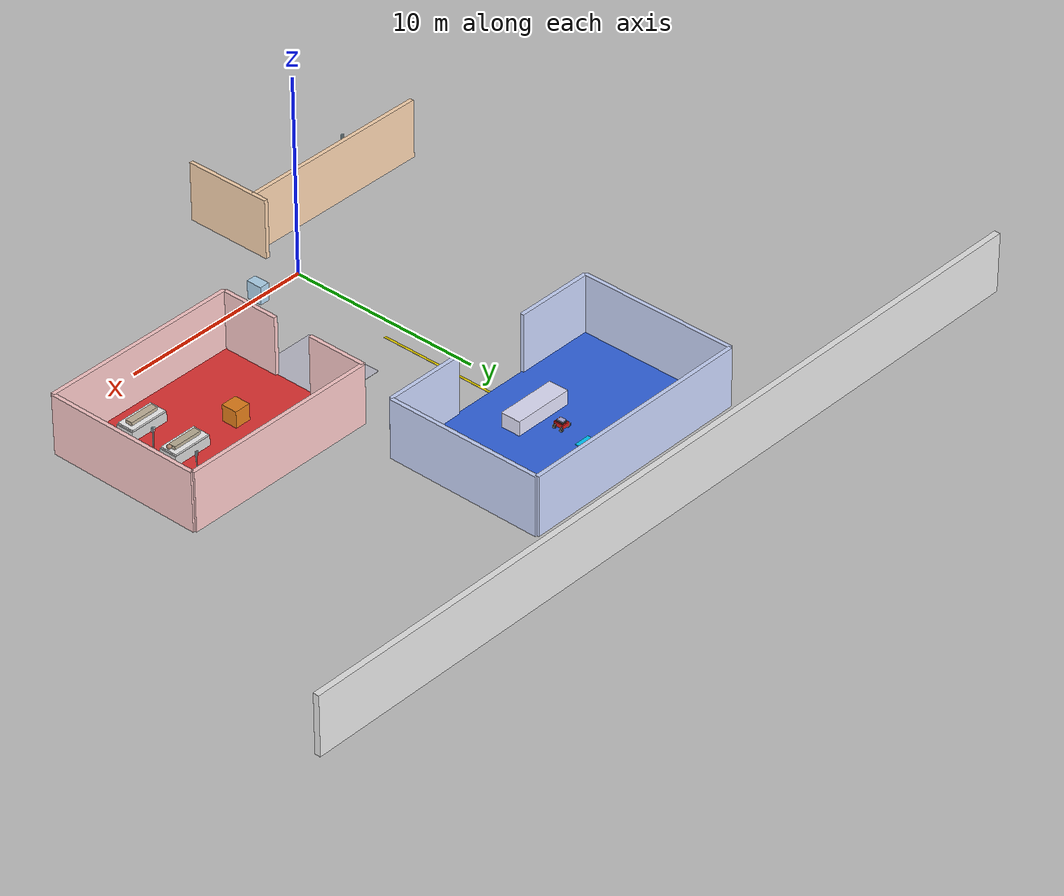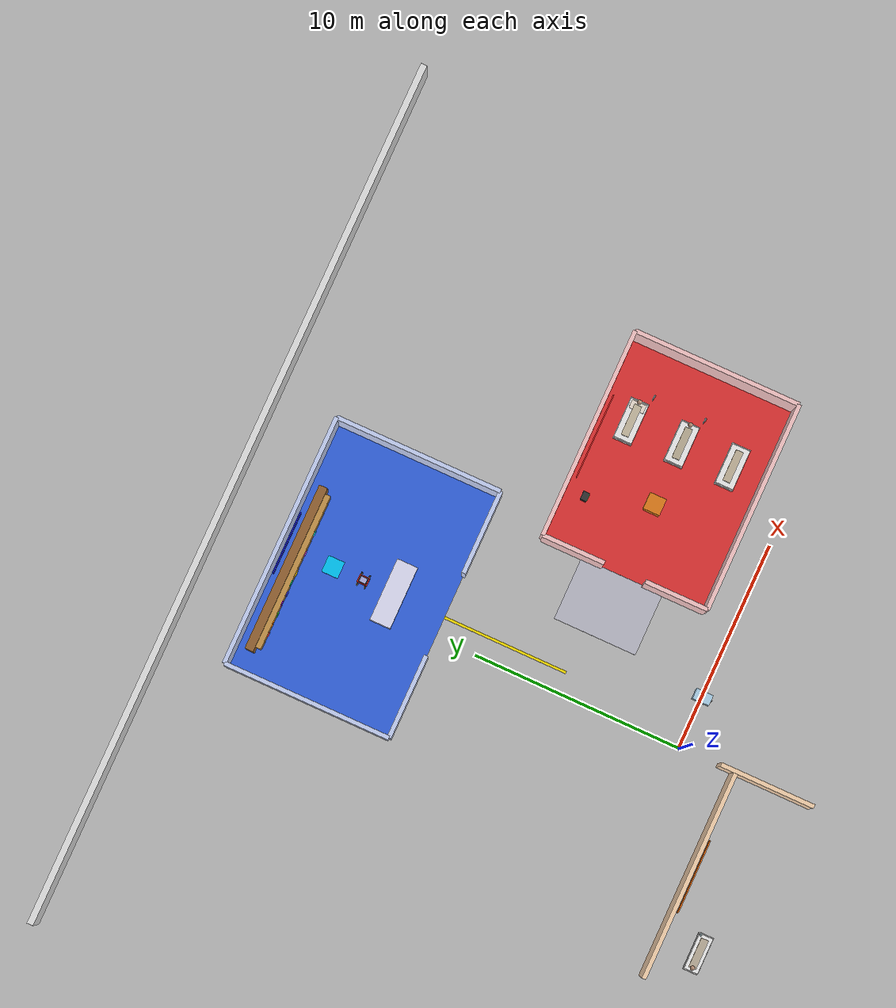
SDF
<sdf version="1.6">
 <world name="hospital">
  <model name="wall_north">
   <static>true</static>
   <pose>2 23 1.5 0 0 0</pose>
   <link name="link">
    <collision name="col"><geometry><box><size>42 0.3 3.0</size></box></geometry></collision>
    <visual name="vis">
     <geometry><box><size>42 0.3 3.0</size></box></geometry>
     <material><ambient>0.92 0.92 0.92 1</ambient><diffuse>0.92 0.92 0.92 1</diffuse></material>
    </visual>
   </link>
  </model>
  <model name="guide_line_1">
   <static>true</static>
   <pose>1.0 10.0 0.06 0 0 0</pose>
   <link name="link">
    <visual name="vis">
     <geometry><box><size>0.12 8 0.01</size></box></geometry>
     <material><ambient>1.0 0.9 0.0 1</ambient><diffuse>1.0 0.9 0.0 1</diffuse></material>
    </visual>
   </link>
  </model>
  <model name="med_cart_corridor_1">
   <static>true</static>
   <pose>2.5 0.0 0.45 0 0 0</pose>
   <link name="link">
    <collision name="col"><geometry><box><size>0.5 0.8 0.9</size></box></geometry></collision>
    <visual name="body">
     <geometry><box><size>0.5 0.8 0.9</size></box></geometry>
     <material><ambient>0.7 0.85 0.95 1</ambient><diffuse>0.7 0.85 0.95 1</diffuse></material>
    </visual>
    <visual name="handle">
     <pose>0 -0.45 0.1 0 0 0</pose>
     <geometry><cylinder><radius>0.02</radius><length>0.6</length></cylinder></geometry>
     <material><ambient>0.6 0.6 0.6 1</ambient><diffuse>0.6 0.6 0.6 1</diffuse></material>
    </visual>
   </link>
  </model>
  <model name="pharmacy_floor">
   <static>true</static>
   <pose>1.0 16.0 0.06 0 0 0</pose>
   <link name="link">
    <visual name="vis">
     <geometry><box><size>12 8 0.02</size></box></geometry>
     <material><ambient>0.2 0.4 0.9 1</ambient><diffuse>0.2 0.4 0.9 1</diffuse></material>
    </visual>
   </link>
  </model>
  <model name="pharmacy_wall_north">
   <static>true</static>
   <pose>1.0 20.0 1.5 0 0 0</pose>
   <link name="link">
    <collision name="col"><geometry><box><size>12 0.2 3.0</size></box></geometry></collision>
    <visual name="vis">
     <geometry><box><size>12 0.2 3.0</size></box></geometry>
     <material><ambient>0.8 0.85 1.0 1</ambient><diffuse>0.8 0.85 1.0 1</diffuse></material>
    </visual>
   </link>
  </model>
  <model name="pharmacy_wall_east">
   <static>true</static>
   <pose>7.0 16.0 1.5 0 0 0</pose>
   <link name="link">
    <collision name="col"><geometry><box><size>0.2 8 3.0</size></box></geometry></collision>
    <visual name="vis">
     <geometry><box><size>0.2 8 3.0</size></box></geometry>
     <material><ambient>0.8 0.85 1.0 1</ambient><diffuse>0.8 0.85 1.0 1</diffuse></material>
    </visual>
   </link>
  </model>
  <model name="pharmacy_wall_west">
   <static>true</static>
   <pose>-5.0 16.0 1.5 0 0 0</pose>
   <link name="link">
    <collision name="col"><geometry><box><size>0.2 8 3.0</size></box></geometry></collision>
    <visual name="vis">
     <geometry><box><size>0.2 8 3.0</size></box></geometry>
     <material><ambient>0.8 0.85 1.0 1</ambient><diffuse>0.8 0.85 1.0 1</diffuse></material>
    </visual>
   </link>
  </model>
  <model name="pharmacy_wall_south_left">
   <static>true</static>
   <pose>-3.0 12.0 1.5 0 0 0</pose>
   <link name="link">
    <collision name="col"><geometry><box><size>4 0.2 3.0</size></box></geometry></collision>
    <visual name="vis">
     <geometry><box><size>4 0.2 3.0</size></box></geometry>
     <material><ambient>0.8 0.85 1.0 1</ambient><diffuse>0.8 0.85 1.0 1</diffuse></material>
    </visual>
   </link>
  </model>
  <model name="pharmacy_wall_south_right">
   <static>true</static>
   <pose>5.0 12.0 1.5 0 0 0</pose>
   <link name="link">
    <collision name="col"><geometry><box><size>4 0.2 3.0</size></box></geometry></collision>
    <visual name="vis">
     <geometry><box><size>4 0.2 3.0</size></box></geometry>
     <material><ambient>0.8 0.85 1.0 1</ambient><diffuse>0.8 0.85 1.0 1</diffuse></material>
    </visual>
   </link>
  </model>
  <model name="pharmacy_shelf_back">
   <static>true</static>
   <pose>0 19.3 1.0 0 0 0</pose>
   <link name="link">
    <collision name="col"><geometry><box><size>8 0.4 2.0</size></box></geometry></collision>
    <visual name="vis">
     <geometry><box><size>8 0.4 2.0</size></box></geometry>
     <material><ambient>0.6 0.4 0.2 1</ambient><diffuse>0.6 0.4 0.2 1</diffuse></material>
    </visual>
   </link>
  </model>
  <model name="shelf_plank_1">
   <static>true</static>
   <pose>0 19.0 0.5 0 0 0</pose>
   <link name="link">
    <visual name="vis">
     <geometry><box><size>7.5 0.3 0.05</size></box></geometry>
     <material><ambient>0.8 0.6 0.3 1</ambient><diffuse>0.8 0.6 0.3 1</diffuse></material>
    </visual>
   </link>
  </model>
  <model name="shelf_plank_2">
   <static>true</static>
   <pose>0 19.0 1.1 0 0 0</pose>
   <link name="link">
    <visual name="vis">
     <geometry><box><size>7.5 0.3 0.05</size></box></geometry>
     <material><ambient>0.8 0.6 0.3 1</ambient><diffuse>0.8 0.6 0.3 1</diffuse></material>
    </visual>
   </link>
  </model>
  <model name="shelf_plank_3">
   <static>true</static>
   <pose>0 19.0 1.7 0 0 0</pose>
   <link name="link">
    <visual name="vis">
     <geometry><box><size>7.5 0.3 0.05</size></box></geometry>
     <material><ambient>0.8 0.6 0.3 1</ambient><diffuse>0.8 0.6 0.3 1</diffuse></material>
    </visual>
   </link>
  </model>
  <model name="med_box_1">
   <static>true</static>
   <pose>-3 18.9 0.6 0 0 0</pose>
   <link name="link">
    <collision name="col"><geometry><box><size>0.25 0.15 0.2</size></box></geometry></collision>
    <visual name="vis">
     <geometry><box><size>0.25 0.15 0.2</size></box></geometry>
     <material><ambient>1 0.2 0.2 1</ambient><diffuse>1 0.2 0.2 1</diffuse></material>
    </visual>
   </link>
  </model>
  <model name="med_box_2">
   <static>true</static>
   <pose>-2 18.9 0.6 0 0 0</pose>
   <link name="link">
    <collision name="col"><geometry><box><size>0.25 0.15 0.2</size></box></geometry></collision>
    <visual name="vis">
     <geometry><box><size>0.25 0.15 0.2</size></box></geometry>
     <material><ambient>0.2 0.8 0.2 1</ambient><diffuse>0.2 0.8 0.2 1</diffuse></material>
    </visual>
   </link>
  </model>
  <model name="med_box_3">
   <static>true</static>
   <pose>-1 18.9 0.6 0 0 0</pose>
   <link name="link">
    <collision name="col"><geometry><box><size>0.25 0.15 0.2</size></box></geometry></collision>
    <visual name="vis">
     <geometry><box><size>0.25 0.15 0.2</size></box></geometry>
     <material><ambient>0.2 0.2 1 1</ambient><diffuse>0.2 0.2 1 1</diffuse></material>
    </visual>
   </link>
  </model>
  <model name="med_box_4">
   <static>true</static>
   <pose>0 18.9 0.6 0 0 0</pose>
   <link name="link">
    <collision name="col"><geometry><box><size>0.25 0.15 0.2</size></box></geometry></collision>
    <visual name="vis">
     <geometry><box><size>0.25 0.15 0.2</size></box></geometry>
     <material><ambient>1 0.8 0 1</ambient><diffuse>1 0.8 0 1</diffuse></material>
    </visual>
   </link>
  </model>
  <model name="med_box_5">
   <static>true</static>
   <pose>1 18.9 0.6 0 0 0</pose>
   <link name="link">
    <collision name="col"><geometry><box><size>0.25 0.15 0.2</size></box></geometry></collision>
    <visual name="vis">
     <geometry><box><size>0.25 0.15 0.2</size></box></geometry>
     <material><ambient>0.8 0.2 0.8 1</ambient><diffuse>0.8 0.2 0.8 1</diffuse></material>
    </visual>
   </link>
  </model>
  <model name="med_box_6">
   <static>true</static>
   <pose>2 18.9 0.6 0 0 0</pose>
   <link name="link">
    <collision name="col"><geometry><box><size>0.25 0.15 0.2</size></box></geometry></collision>
    <visual name="vis">
     <geometry><box><size>0.25 0.15 0.2</size></box></geometry>
     <material><ambient>0 0.9 0.9 1</ambient><diffuse>0 0.9 0.9 1</diffuse></material>
    </visual>
   </link>
  </model>
  <model name="med_box_r2_1">
   <static>true</static>
   <pose>-2.5 18.9 1.2 0 0 0</pose>
   <link name="link">
    <visual name="vis">
     <geometry><box><size>0.3 0.15 0.25</size></box></geometry>
     <material><ambient>1 0.5 0 1</ambient><diffuse>1 0.5 0 1</diffuse></material>
    </visual>
   </link>
  </model>
  <model name="med_box_r2_2">
   <static>true</static>
   <pose>-1.5 18.9 1.2 0 0 0</pose>
   <link name="link">
    <visual name="vis">
     <geometry><box><size>0.3 0.15 0.25</size></box></geometry>
     <material><ambient>0.5 0 0.8 1</ambient><diffuse>0.5 0 0.8 1</diffuse></material>
    </visual>
   </link>
  </model>
  <model name="med_box_r2_3">
   <static>true</static>
   <pose>-0.5 18.9 1.2 0 0 0</pose>
   <link name="link">
    <visual name="vis">
     <geometry><box><size>0.3 0.15 0.25</size></box></geometry>
     <material><ambient>0 0.7 0.4 1</ambient><diffuse>0 0.7 0.4 1</diffuse></material>
    </visual>
   </link>
  </model>
  <model name="pharmacy_prep_table">
   <static>true</static>
   <pose>1.0 14.5 0.4 0 0 0</pose>
   <link name="link">
    <collision name="col"><geometry><box><size>3.0 1.0 0.8</size></box></geometry></collision>
    <visual name="vis">
     <geometry><box><size>3.0 1.0 0.8</size></box></geometry>
     <material><ambient>0.9 0.9 1.0 1</ambient><diffuse>0.9 0.9 1.0 1</diffuse></material>
    </visual>
   </link>
  </model>
  <model name="robot_charging_pad">
   <static>true</static>
   <pose>1.0 17.5 0.07 0 0 0</pose>
   <link name="link">
    <visual name="vis">
     <geometry><box><size>0.8 0.8 0.05</size></box></geometry>
     <material><ambient>0 0.8 1 1</ambient><diffuse>0 0.8 1 1</diffuse><emissive>0 0.2 0.5 1</emissive></material>
    </visual>
   </link>
  </model>
  <model name="sign_pharmacy">
   <static>true</static>
   <pose>1.0 19.7 2.5 0 0 0</pose>
   <link name="link">
    <visual name="vis">
     <geometry><box><size>3.0 0.05 0.5</size></box></geometry>
     <material><ambient>0.1 0.1 0.9 1</ambient><diffuse>0.1 0.1 0.9 1</diffuse></material>
    </visual>
   </link>
  </model>
  <model name="icu_floor">
   <static>true</static>
   <pose>11.0 5.5 0.06 0 0 0</pose>
   <link name="link">
    <visual name="vis">
     <geometry><box><size>10 8 0.02</size></box></geometry>
     <material><ambient>0.9 0.2 0.2 1</ambient><diffuse>0.9 0.2 0.2 1</diffuse></material>
    </visual>
   </link>
  </model>
  <model name="icu_wall_north">
   <static>true</static>
   <pose>11.0 9.5 1.5 0 0 0</pose>
   <link name="link">
    <collision name="col"><geometry><box><size>10 0.2 3.0</size></box></geometry></collision>
    <visual name="vis">
     <geometry><box><size>10 0.2 3.0</size></box></geometry>
     <material><ambient>1.0 0.8 0.8 1</ambient><diffuse>1.0 0.8 0.8 1</diffuse></material>
    </visual>
   </link>
  </model>
  <model name="icu_wall_east">
   <static>true</static>
   <pose>16.0 5.5 1.5 0 0 0</pose>
   <link name="link">
    <collision name="col"><geometry><box><size>0.2 8 3.0</size></box></geometry></collision>
    <visual name="vis">
     <geometry><box><size>0.2 8 3.0</size></box></geometry>
     <material><ambient>1.0 0.8 0.8 1</ambient><diffuse>1.0 0.8 0.8 1</diffuse></material>
    </visual>
   </link>
  </model>
  <model name="icu_wall_south">
   <static>true</static>
   <pose>11.0 1.5 1.5 0 0 0</pose>
   <link name="link">
    <collision name="col"><geometry><box><size>10 0.2 3.0</size></box></geometry></collision>
    <visual name="vis">
     <geometry><box><size>10 0.2 3.0</size></box></geometry>
     <material><ambient>1.0 0.8 0.8 1</ambient><diffuse>1.0 0.8 0.8 1</diffuse></material>
    </visual>
   </link>
  </model>
  <model name="icu_wall_west_top">
   <static>true</static>
   <pose>6.0 8.0 1.5 0 0 0</pose>
   <link name="link">
    <collision name="col"><geometry><box><size>0.2 3 3.0</size></box></geometry></collision>
    <visual name="vis">
     <geometry><box><size>0.2 3 3.0</size></box></geometry>
     <material><ambient>1.0 0.8 0.8 1</ambient><diffuse>1.0 0.8 0.8 1</diffuse></material>
    </visual>
   </link>
  </model>
  <model name="icu_wall_west_bottom">
   <static>true</static>
   <pose>6.0 3.0 1.5 0 0 0</pose>
   <link name="link">
    <collision name="col"><geometry><box><size>0.2 3 3.0</size></box></geometry></collision>
    <visual name="vis">
     <geometry><box><size>0.2 3 3.0</size></box></geometry>
     <material><ambient>1.0 0.8 0.8 1</ambient><diffuse>1.0 0.8 0.8 1</diffuse></material>
    </visual>
   </link>
  </model>
  <model name="corridor_icu">
   <static>true</static>
   <pose>4.5 5.5 0.055 0 0 0</pose>
   <link name="link">
    <visual name="vis">
     <geometry><box><size>3 4 0.02</size></box></geometry>
     <material><ambient>0.75 0.75 0.8 1</ambient><diffuse>0.75 0.75 0.8 1</diffuse></material>
    </visual>
   </link>
  </model>
  <model name="icu_bed_1">
   <static>true</static>
   <pose>12.5 8.0 0.35 0 0 0</pose>
   <link name="link">
    <collision name="col"><geometry><box><size>2.0 0.9 0.5</size></box></geometry></collision>
    <visual name="frame">
     <geometry><box><size>2.0 0.9 0.5</size></box></geometry>
     <material><ambient>0.85 0.85 0.85 1</ambient><diffuse>0.85 0.85 0.85 1</diffuse></material>
    </visual>
    <visual name="mattress">
     <pose>0 0 0.28 0 0 0</pose>
     <geometry><box><size>1.9 0.85 0.1</size></box></geometry>
     <material><ambient>0.97 0.97 0.97 1</ambient><diffuse>0.97 0.97 0.97 1</diffuse></material>
    </visual>
    <visual name="pillow">
     <pose>0.7 0 0.34 0 0 0</pose>
     <geometry><box><size>0.4 0.7 0.08</size></box></geometry>
     <material><ambient>0.95 0.9 0.85 1</ambient><diffuse>0.95 0.9 0.85 1</diffuse></material>
    </visual>
   </link>
  </model>
  <model name="patient_icu_1_body">
   <static>true</static>
   <pose>12.5 8.0 0.75 0 0 0</pose>
   <link name="link">
    <visual name="vis">
     <geometry><box><size>1.5 0.35 0.18</size></box></geometry>
     <material><ambient>0.8 0.75 0.65 1</ambient><diffuse>0.8 0.75 0.65 1</diffuse></material>
    </visual>
   </link>
  </model>
  <model name="patient_icu_1_head">
   <static>true</static>
   <pose>13.4 8.0 0.85 0 0 0</pose>
   <link name="link">
    <visual name="vis">
     <geometry><sphere><radius>0.11</radius></sphere></geometry>
     <material><ambient>0.75 0.6 0.5 1</ambient><diffuse>0.75 0.6 0.5 1</diffuse></material>
    </visual>
   </link>
  </model>
  <model name="iv_stand_1">
   <static>true</static>
   <pose>13.8 7.5 0.9 0 0 0</pose>
   <link name="link">
    <collision name="col">
     <geometry><cylinder><radius>0.03</radius><length>1.8</length></cylinder></geometry>
    </collision>
    <visual name="pole">
     <geometry><cylinder><radius>0.03</radius><length>1.8</length></cylinder></geometry>
     <material><ambient>0.8 0.8 0.8 1</ambient><diffuse>0.8 0.8 0.8 1</diffuse></material>
    </visual>
    <visual name="bag">
     <pose>0 0 0.8 0 0 0</pose>
     <geometry><box><size>0.14 0.08 0.22</size></box></geometry>
     <material><ambient>0.8 0.95 1.0 0.7</ambient><diffuse>0.8 0.95 1.0 0.7</diffuse></material>
    </visual>
    <visual name="hook">
     <pose>0 0 0.92 0 0 0</pose>
     <geometry><box><size>0.18 0.03 0.03</size></box></geometry>
     <material><ambient>0.7 0.7 0.7 1</ambient><diffuse>0.7 0.7 0.7 1</diffuse></material>
    </visual>
   </link>
  </model>
  <model name="icu_bed_2">
   <static>true</static>
   <pose>12.5 5.5 0.35 0 0 0</pose>
   <link name="link">
    <collision name="col"><geometry><box><size>2.0 0.9 0.5</size></box></geometry></collision>
    <visual name="frame">
     <geometry><box><size>2.0 0.9 0.5</size></box></geometry>
     <material><ambient>0.85 0.85 0.85 1</ambient><diffuse>0.85 0.85 0.85 1</diffuse></material>
    </visual>
    <visual name="mattress">
     <pose>0 0 0.28 0 0 0</pose>
     <geometry><box><size>1.9 0.85 0.1</size></box></geometry>
     <material><ambient>0.97 0.97 0.97 1</ambient><diffuse>0.97 0.97 0.97 1</diffuse></material>
    </visual>
   </link>
  </model>
  <model name="patient_icu_2_body">
   <static>true</static>
   <pose>12.5 5.5 0.75 0 0 0</pose>
   <link name="link">
    <visual name="vis">
     <geometry><box><size>1.5 0.35 0.18</size></box></geometry>
     <material><ambient>0.75 0.7 0.6 1</ambient><diffuse>0.75 0.7 0.6 1</diffuse></material>
    </visual>
   </link>
  </model>
  <model name="patient_icu_2_head">
   <static>true</static>
   <pose>13.4 5.5 0.85 0 0 0</pose>
   <link name="link">
    <visual name="vis">
     <geometry><sphere><radius>0.11</radius></sphere></geometry>
     <material><ambient>0.7 0.55 0.45 1</ambient><diffuse>0.7 0.55 0.45 1</diffuse></material>
    </visual>
   </link>
  </model>
  <model name="iv_stand_2">
   <static>true</static>
   <pose>13.8 5.0 0.9 0 0 0</pose>
   <link name="link">
    <collision name="col">
     <geometry><cylinder><radius>0.03</radius><length>1.8</length></cylinder></geometry>
    </collision>
    <visual name="pole">
     <geometry><cylinder><radius>0.03</radius><length>1.8</length></cylinder></geometry>
     <material><ambient>0.8 0.8 0.8 1</ambient><diffuse>0.8 0.8 0.8 1</diffuse></material>
    </visual>
    <visual name="bag">
     <pose>0 0 0.8 0 0 0</pose>
     <geometry><box><size>0.14 0.08 0.22</size></box></geometry>
     <material><ambient>0.8 0.95 1.0 0.7</ambient><diffuse>0.8 0.95 1.0 0.7</diffuse></material>
    </visual>
   </link>
  </model>
  <model name="icu_bed_3">
   <static>true</static>
   <pose>12.5 3.0 0.35 0 0 0</pose>
   <link name="link">
    <collision name="col"><geometry><box><size>2.0 0.9 0.5</size></box></geometry></collision>
    <visual name="frame">
     <geometry><box><size>2.0 0.9 0.5</size></box></geometry>
     <material><ambient>0.85 0.85 0.85 1</ambient><diffuse>0.85 0.85 0.85 1</diffuse></material>
    </visual>
    <visual name="mattress">
     <pose>0 0 0.28 0 0 0</pose>
     <geometry><box><size>1.9 0.85 0.1</size></box></geometry>
     <material><ambient>0.97 0.97 0.97 1</ambient><diffuse>0.97 0.97 0.97 1</diffuse></material>
    </visual>
   </link>
  </model>
  <model name="patient_icu_3_body">
   <static>true</static>
   <pose>12.5 3.0 0.75 0 0 0</pose>
   <link name="link">
    <visual name="vis">
     <geometry><box><size>1.5 0.35 0.18</size></box></geometry>
     <material><ambient>0.78 0.72 0.62 1</ambient><diffuse>0.78 0.72 0.62 1</diffuse></material>
    </visual>
   </link>
  </model>
  <model name="ecg_monitor_icu">
   <static>true</static>
   <pose>8.5 8.5 0.9 0 0 0</pose>
   <link name="link">
    <collision name="col"><geometry><box><size>0.4 0.3 0.6</size></box></geometry></collision>
    <visual name="body">
     <geometry><box><size>0.4 0.3 0.6</size></box></geometry>
     <material><ambient>0.2 0.2 0.2 1</ambient><diffuse>0.2 0.2 0.2 1</diffuse></material>
    </visual>
    <visual name="screen">
     <pose>0 -0.16 0.1 0 0 0</pose>
     <geometry><box><size>0.3 0.02 0.25</size></box></geometry>
     <material>
      <ambient>0.1 0.8 0.3 1</ambient>
      <diffuse>0.1 0.8 0.3 1</diffuse>
      <emissive>0 0.3 0.1 1</emissive>
     </material>
    </visual>
   </link>
  </model>
  <model name="delivery_table_icu">
   <static>true</static>
   <pose>9.5 5.5 0.45 0 0 0</pose>
   <link name="link">
    <collision name="col"><geometry><box><size>0.8 0.8 0.9</size></box></geometry></collision>
    <visual name="vis">
     <geometry><box><size>0.8 0.8 0.9</size></box></geometry>
     <material><ambient>0.9 0.5 0.1 1</ambient><diffuse>0.9 0.5 0.1 1</diffuse></material>
    </visual>
   </link>
  </model>
  <model name="sign_icu">
   <static>true</static>
   <pose>11.0 9.2 2.5 0 0 0</pose>
   <link name="link">
    <visual name="vis">
     <geometry><box><size>4.0 0.05 0.5</size></box></geometry>
     <material><ambient>0.9 0.1 0.1 1</ambient><diffuse>0.9 0.1 0.1 1</diffuse></material>
    </visual>
   </link>
  </model>
  <model name="emergency_wall_north">
   <static>true</static>
   <pose>-5.0 -2.6 1.5 0 0 0</pose>
   <link name="link">
    <collision name="col"><geometry><box><size>10 0.2 3.0</size></box></geometry></collision>
    <visual name="vis">
     <geometry><box><size>10 0.2 3.0</size></box></geometry>
     <material><ambient>1.0 0.85 0.7 1</ambient><diffuse>1.0 0.85 0.7 1</diffuse></material>
    </visual>
   </link>
  </model>
  <model name="emergency_wall_east_top">
   <static>true</static>
   <pose>0.0 -4.1 1.5 0 0 0</pose>
   <link name="link">
    <collision name="col"><geometry><box><size>0.2 4.5 3.0</size></box></geometry></collision>
    <visual name="vis">
     <geometry><box><size>0.2 4.5 3.0</size></box></geometry>
     <material><ambient>1.0 0.85 0.7 1</ambient><diffuse>1.0 0.85 0.7 1</diffuse></material>
    </visual>
   </link>
  </model>
  <model name="emergency_gurney_1">
   <static>true</static>
   <pose>-8.0 -4.5 0.4 0 0 0</pose>
   <link name="link">
    <collision name="col"><geometry><box><size>1.8 0.7 0.5</size></box></geometry></collision>
    <visual name="frame">
     <geometry><box><size>1.8 0.7 0.5</size></box></geometry>
     <material><ambient>0.75 0.75 0.75 1</ambient><diffuse>0.75 0.75 0.75 1</diffuse></material>
    </visual>
    <visual name="mattress">
     <pose>0 0 0.28 0 0 0</pose>
     <geometry><box><size>1.7 0.65 0.08</size></box></geometry>
     <material><ambient>0.97 0.97 0.97 1</ambient><diffuse>0.97 0.97 0.97 1</diffuse></material>
    </visual>
   </link>
  </model>
  <model name="patient_gurney_body">
   <static>true</static>
   <pose>-8.0 -4.5 0.75 0 0 0</pose>
   <link name="link">
    <visual name="vis">
     <geometry><box><size>1.4 0.35 0.18</size></box></geometry>
     <material><ambient>0.75 0.7 0.62 1</ambient><diffuse>0.75 0.7 0.62 1</diffuse></material>
    </visual>
   </link>
  </model>
  <model name="patient_gurney_head">
   <static>true</static>
   <pose>-8.7 -4.5 0.85 0 0 0</pose>
   <link name="link">
    <visual name="vis">
     <geometry><sphere><radius>0.11</radius></sphere></geometry>
     <material><ambient>0.7 0.55 0.45 1</ambient><diffuse>0.7 0.55 0.45 1</diffuse></material>
    </visual>
   </link>
  </model>
  <model name="iv_stand_emergency">
   <static>true</static>
   <pose>-7.2 -4.2 0.9 0 0 0</pose>
   <link name="link">
    <collision name="col">
     <geometry><cylinder><radius>0.03</radius><length>1.8</length></cylinder></geometry>
    </collision>
    <visual name="pole">
     <geometry><cylinder><radius>0.03</radius><length>1.8</length></cylinder></geometry>
     <material><ambient>0.8 0.8 0.8 1</ambient><diffuse>0.8 0.8 0.8 1</diffuse></material>
    </visual>
    <visual name="bag">
     <pose>0 0 0.8 0 0 0</pose>
     <geometry><box><size>0.14 0.08 0.22</size></box></geometry>
     <material><ambient>0.8 0.95 1.0 0.7</ambient><diffuse>0.8 0.95 1.0 0.7</diffuse></material>
    </visual>
   </link>
  </model>
  <model name="sign_emergency">
   <static>true</static>
   <pose>-5.0 -2.8 2.5 0 0 0</pose>
   <link name="link">
    <visual name="vis">
     <geometry><box><size>3.5 0.05 0.5</size></box></geometry>
     <material><ambient>0.95 0.4 0.0 1</ambient><diffuse>0.95 0.4 0.0 1</diffuse></material>
    </visual>
   </link>
  </model>
  <model name="demo">
   <pose>1.0 16.0 0.3 0 0 -1.5708</pose>
   <link name="base_link">
    <pose>0 0 0.1 0 0 0</pose>
    <inertial>
     <mass>15.0</mass>
     <inertia><ixx>0.3738</ixx><ixy>0</ixy><ixz>0</ixz><iyy>0.5015</iyy><iyz>0</iyz><izz>0.7243</izz></inertia>
    </inertial>
    <collision name="base_collision"><geometry><box><size>0.50 0.38 0.20</size></box></geometry></collision>
    <visual name="base_visual">
     <geometry><box><size>0.50 0.38 0.20</size></box></geometry>
     <material>
      <ambient>0.85 0.1 0.1 1</ambient>
      <diffuse>0.85 0.1 0.1 1</diffuse>
      <specular>0.3 0.3 0.3 1</specular>
     </material>
    </visual>
    <visual name="top_visual">
     <pose>0 0 0.12 0 0 0</pose>
     <geometry><box><size>0.40 0.30 0.04</size></box></geometry>
     <material><ambient>0.2 0.2 0.2 1</ambient><diffuse>0.2 0.2 0.2 1</diffuse></material>
    </visual>
    <visual name="led_visual">
     <pose>0.15 0 0.15 0 0 0</pose>
     <geometry><sphere><radius>0.025</radius></sphere></geometry>
     <material><ambient>0 0.5 1 1</ambient><diffuse>0 0.5 1 1</diffuse><emissive>0 0.3 1 1</emissive></material>
    </visual>
    <visual name="cargo_bay">
     <pose>0 0 0.16 0 0 0</pose>
     <geometry><box><size>0.30 0.25 0.08</size></box></geometry>
     <material><ambient>0.7 0.7 0.9 1</ambient><diffuse>0.7 0.7 0.9 1</diffuse></material>
    </visual>
    <sensor name="hokuyo_lidar" type="ray">
     <pose>0.0 0 0.21 0 0 0</pose>
     <always_on>1</always_on>
     <update_rate>10</update_rate>
     <visualize>true</visualize>
     <ray>
      <scan>
       <horizontal>
        <samples>360</samples>
        <resolution>1</resolution>
        <min_angle>-3.14159</min_angle>
        <max_angle>3.14159</max_angle>
       </horizontal>
      </scan>
      <range><min>0.10</min><max>10.0</max><resolution>0.01</resolution></range>
     </ray>
     <plugin name="laser_plugin" filename="libgazebo_ros_ray_sensor.so">
      <ros><namespace>/demo</namespace><remapping>~/out:=scan</remapping></ros>
      <output_type>sensor_msgs/LaserScan</output_type>
      <frame_name>base_link</frame_name>
     </plugin>
    </sensor>
   </link>
   <link name="front_left_wheel">
    <pose>0.19 0.22 0 0 1.5707 0</pose>
    <inertial>
     <mass>1.5</mass>
     <inertia><ixx>0.0051</ixx><ixy>0</ixy><ixz>0</ixz><iyy>0.0051</iyy><iyz>0</iyz><izz>0.0090</izz></inertia>
    </inertial>
    <collision name="col">
     <geometry><cylinder><radius>0.11</radius><length>0.08</length></cylinder></geometry>
    </collision>
    <visual name="vis">
     <geometry><cylinder><radius>0.11</radius><length>0.08</length></cylinder></geometry>
     <material><ambient>0.1 0.1 0.1 1</ambient><diffuse>0.1 0.1 0.1 1</diffuse></material>
    </visual>
   </link>
   <link name="front_right_wheel">
    <pose>0.19 -0.22 0 0 1.5707 0</pose>
    <inertial>
     <mass>1.5</mass>
     <inertia><ixx>0.0051</ixx><ixy>0</ixy><ixz>0</ixz><iyy>0.0051</iyy><iyz>0</iyz><izz>0.0090</izz></inertia>
    </inertial>
    <collision name="col">
     <geometry><cylinder><radius>0.11</radius><length>0.08</length></cylinder></geometry>
    </collision>
    <visual name="vis">
     <geometry><cylinder><radius>0.11</radius><length>0.08</length></cylinder></geometry>
     <material><ambient>0.1 0.1 0.1 1</ambient><diffuse>0.1 0.1 0.1 1</diffuse></material>
    </visual>
   </link>
   <link name="back_left_wheel">
    <pose>-0.19 0.22 0 0 1.5707 0</pose>
    <inertial>
     <mass>1.5</mass>
     <inertia><ixx>0.0051</ixx><ixy>0</ixy><ixz>0</ixz><iyy>0.0051</iyy><iyz>0</iyz><izz>0.0090</izz></inertia>
    </inertial>
    <collision name="col">
     <geometry><cylinder><radius>0.11</radius><length>0.08</length></cylinder></geometry>
    </collision>
    <visual name="vis">
     <geometry><cylinder><radius>0.11</radius><length>0.08</length></cylinder></geometry>
     <material><ambient>0.1 0.1 0.1 1</ambient><diffuse>0.1 0.1 0.1 1</diffuse></material>
    </visual>
   </link>
   <link name="back_right_wheel">
    <pose>-0.19 -0.22 0 0 1.5707 0</pose>
    <inertial>
     <mass>1.5</mass>
     <inertia><ixx>0.0051</ixx><ixy>0</ixy><ixz>0</ixz><iyy>0.0051</iyy><iyz>0</iyz><izz>0.0090</izz></inertia>
    </inertial>
    <collision name="col">
     <geometry><cylinder><radius>0.11</radius><length>0.08</length></cylinder></geometry>
    </collision>
    <visual name="vis">
     <geometry><cylinder><radius>0.11</radius><length>0.08</length></cylinder></geometry>
     <material><ambient>0.1 0.1 0.1 1</ambient><diffuse>0.1 0.1 0.1 1</diffuse></material>
    </visual>
   </link>
   <joint name="front_left_wheel_joint" type="revolute">
    <parent>base_link</parent>
    <child>front_left_wheel</child>
    <axis><xyz>0 0 1</xyz><dynamics><damping>0.05</damping></dynamics></axis>
   </joint>
   <joint name="front_right_wheel_joint" type="revolute">
    <parent>base_link</parent>
    <child>front_right_wheel</child>
    <axis><xyz>0 0 1</xyz><dynamics><damping>0.05</damping></dynamics></axis>
   </joint>
   <joint name="back_left_wheel_joint" type="revolute">
    <parent>base_link</parent>
    <child>back_left_wheel</child>
    <axis><xyz>0 0 1</xyz><dynamics><damping>0.05</damping></dynamics></axis>
   </joint>
   <joint name="back_right_wheel_joint" type="revolute">
    <parent>base_link</parent>
    <child>back_right_wheel</child>
    <axis><xyz>0 0 1</xyz><dynamics><damping>0.05</damping></dynamics></axis>
   </joint>
   <plugin filename="gz-sim-diff-drive-system" name="gz::sim::systems::DiffDrive">
    <left_joint>front_left_wheel_joint</left_joint>
    <left_joint>back_left_wheel_joint</left_joint>
    <right_joint>front_right_wheel_joint</right_joint>
    <right_joint>back_right_wheel_joint</right_joint>
    <wheel_separation>0.44</wheel_separation>
    <wheel_radius>0.11</wheel_radius>
    <topic>/demo/cmd_vel</topic>
    <odom_topic>/demo/odom</odom_topic>
    <tf_topic>/tf</tf_topic>
    <frame_id>odom</frame_id>
    <child_frame_id>base_link</child_frame_id>
    <odom_publish_frequency>20</odom_publish_frequency>
    <max_linear_acceleration>2.0</max_linear_acceleration>
   </plugin>
  </model>
 </world>
</sdf>
